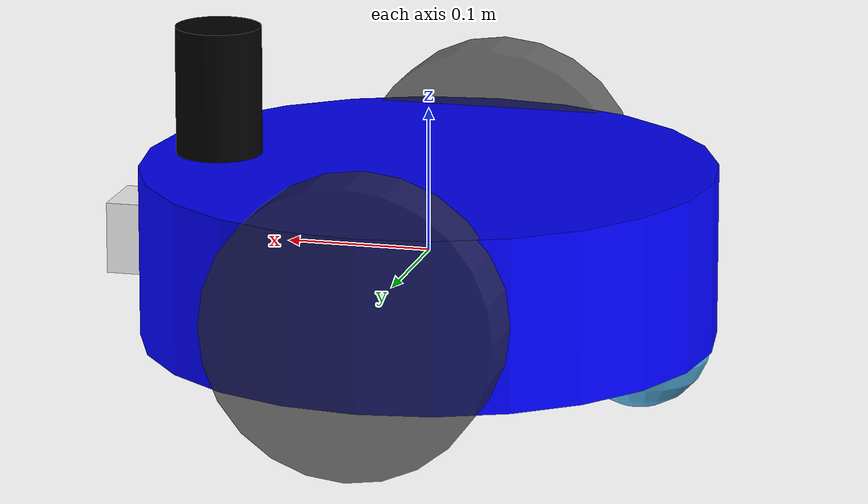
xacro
<?xml version='1.0'?>

<robot name="my_robot" xmlns:xacro="http://www.ros.org/wiki/xacro">
<xacro:include filename="$(find my_robot)/urdf/my_robot.gazebo" />

  <link name="robot_footprint"></link>

  <joint name="robot_footprint_joint" type="fixed">
    <origin xyz="0 0 0" rpy="0 0 0" />
    <parent link="robot_footprint"/>
    <child link="chassis" />
  </joint>

  <link name='chassis'>
    <pose>0 0 0.1 0 0 0</pose>

    <inertial>
      <mass value="15.0"/>
      <origin xyz="0.0 0 0" rpy=" 0 0 0"/>
      <inertia
          ixx="0.1" ixy="0" ixz="0"
          iyy="0.1" iyz="0"
          izz="0.1"
      />
    </inertial>

    <collision name='collision'>
      <origin xyz="0 0 0" rpy=" 0 0 0"/>
      <geometry>
        <cylinder radius="0.2" length="0.12" />
      </geometry>
    </collision>

    <visual name='chassis_visual'>
      <origin xyz="0 0 0" rpy=" 0 0 0"/>
      <geometry>
        <cylinder radius="0.2" length="0.12"/>
      </geometry>
  <material name="blue">
    <color rgba="0 0 1 1"/>
  </material>

    </visual>

    <collision name='back_caster_collision'>
      <origin xyz="-0.15 0 -0.05" rpy=" 0 0 0"/>
      <geometry>
        <sphere radius="0.05"/>
      </geometry>
      <surface>
        <friction>
          <ode>
            <mu>0</mu>
            <mu2>0</mu2>
            <slip1>1.0</slip1>
            <slip2>1.0</slip2>
          </ode>
        </friction>
      </surface>
    </collision>

    <visual name='back_caster_visual'>
      <origin xyz="-0.15 0 -0.05" rpy=" 0 0 0"/>
      <geometry>
        <sphere radius="0.05"/>
      </geometry>
    </visual>

    <collision name='front_caster_collision'>
      <origin xyz="0.15 0 -0.05" rpy=" 0 0 0"/>
      <geometry>
        <sphere radius="0.05"/>
      </geometry>
      <surface>
        <friction>
          <ode>
            <mu>0</mu>
            <mu2>0</mu2>
            <slip1>1.0</slip1>
            <slip2>1.0</slip2>
          </ode>
        </friction>
      </surface>
    </collision>

    <visual name='front_caster_visual'>
      <origin xyz="0.15 0 -0.05" rpy=" 0 0 0"/>
      <geometry>
        <sphere radius="0.05"/>
      </geometry>
    </visual>

  </link>

  <joint type="continuous" name="left_wheel_hinge">
    <origin xyz="0 0.2 0" rpy="0 0 0"/>
    <child link="left_wheel"/>
    <parent link="chassis"/>
    <axis xyz="0 1 0" rpy="0 0 0"/>
    <limit effort="10000" velocity="1000"/>
    <joint_properties damping="1.0" friction="1.0"/>
  </joint>

  <link name='left_wheel'>

    <inertial>
      <mass value="5.0"/>
      <origin xyz="0.0 0 0" rpy=" 0 1.5707 1.5707"/>
      <inertia
          ixx="0.1" ixy="0" ixz="0"
          iyy="0.1" iyz="0"
          izz="0.1"
      />
    </inertial>

    <collision name='left_wheel_collision'>
      <origin xyz="0 0 0" rpy=" 0 1.5707 1.5707"/>
      <geometry>
        <cylinder radius="0.1" length="0.05"/>
      </geometry>
    </collision>

    <visual name='left_wheel_visual'>
      <origin xyz="0 0 0" rpy=" 0 1.5707 1.5707"/>
      <geometry>
        <cylinder radius="0.1" length="0.05"/>
      </geometry>
      <material name="gray">
        <color rgba="0.2 0.2 0.2 0.7"/>
      </material>
    </visual>

  </link>

  <joint type="continuous" name="right_wheel_hinge">
    <origin xyz="0 -0.2 0" rpy="0 0 0"/>
    <child link="right_wheel"/>
    <parent link="chassis"/>
    <axis xyz="0 1 0" rpy="0 0 0"/>
    <limit effort="10000" velocity="1000"/>
    <joint_properties damping="1.0" friction="1.0"/>
  </joint>

  <link name='right_wheel'>

    <inertial>
      <mass value="5.0"/>
      <origin xyz="0.0 0 0" rpy=" 0 1.5707 1.5707"/>
      <inertia
          ixx="0.1" ixy="0" ixz="0"
          iyy="0.1" iyz="0"
          izz="0.1"
      />
    </inertial>

    <collision name='right_wheel_collision'>
      <origin xyz="0 0 0" rpy=" 0 1.5707 1.5707"/>
      <geometry>
        <cylinder radius="0.1" length="0.05"/>
      </geometry>
    </collision>

    <visual name='right_wheel_visual'>
      <origin xyz="0 0 0" rpy=" 0 1.5707 1.5707"/>
      <geometry>
        <cylinder radius="0.1" length="0.05"/>
      </geometry>
      <material name="gray">
        <color rgba="0.2 0.2 0.2 0.7"/>
      </material>
    </visual>

  </link>

  <joint type="fixed" name="camera_joint">
    <origin xyz="0.2 0 0" rpy="0 0 0"/>
    <child link="camera"/>
    <parent link="chassis"/>
  </joint>
  <link name='camera'>

    <inertial>
      <mass value="0.1"/>
      <origin xyz="0 0 0" rpy=" 0 0 0"/>
      <inertia
          ixx="1e-6" ixy="0" ixz="0"
          iyy="1e-6" iyz="0"
          izz="1e-6"
      />
    </inertial>

    <collision name='camera_collision'>
      <origin xyz="0 0 0" rpy=" 0 0 0"/>
      <geometry>
        <box size="0.05 0.05 0.05"/>
      </geometry>
    </collision>

    <visual name='camera_visual'>
      <origin xyz="0 0 0" rpy=" 0 0 0"/>
      <geometry>
        <box size="0.05 0.05 0.05"/>
      </geometry>
      <material name="white">
        <color rgba="1 1 1 1"/>
      </material>
    </visual>
  </link>

  <joint type="fixed" name="hokuyo_joint">
    <origin xyz="0.15 0 0.1" rpy="0 0 0"/>
    <child link="hokuyo"/>
    <parent link="chassis"/>
  </joint>

  <link name='hokuyo'>

    <inertial>
      <mass value="0.1"/>
      <origin xyz="0 0 0" rpy=" 0 0 0"/>
      <inertia
          ixx="1e-6" ixy="0" ixz="0"
          iyy="1e-6" iyz="0"
          izz="1e-6"
      />
    </inertial>

    <collision name='hokuyo_collision'>
      <origin xyz="0 0 0" rpy=" 0 0 0"/>
      <geometry>
        <cylinder radius="0.03" length="0.1"/>
      </geometry>
    </collision>

    <visual name='hokuyo_visual'>
      <origin xyz="0 0 0" rpy=" 0 0 0"/>
      <geometry>
        <cylinder radius="0.03" length="0.1"/>
        <mesh filename="package://my_robot/meshes/hokuyo.dae"/>
      </geometry>
      <material name="black">
        <color rgba="0 0 0 1"/>
      </material>
      </visual>
  </link>

</robot>
